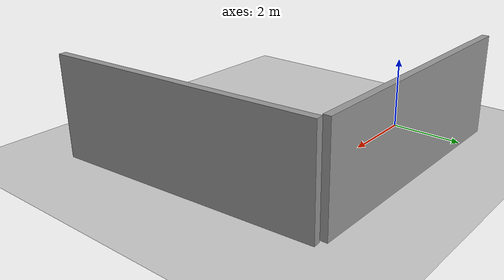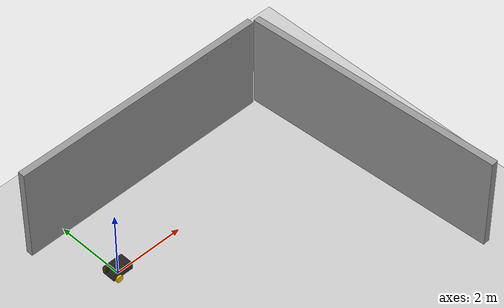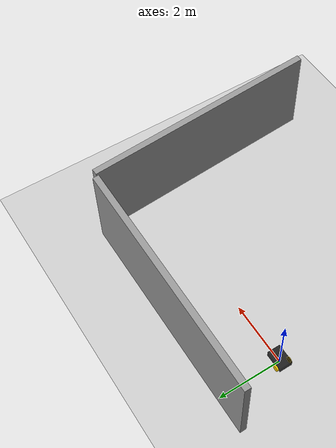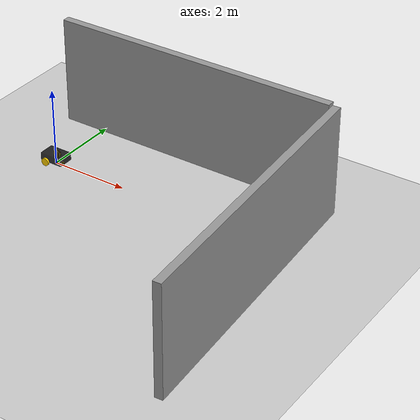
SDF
<sdf version="1.9">
 <world name="empty">
  <physics name="1ms" type="ignored">
   <max_step_size>0.001</max_step_size>
   <real_time_factor>1</real_time_factor>
   <real_time_update_rate>1000</real_time_update_rate>
  </physics>
  <plugin name="gz::sim::systems::Physics" filename="ignition-gazebo-physics-system"/>
  <plugin name="gz::sim::systems::UserCommands" filename="ignition-gazebo-user-commands-system"/>
  <plugin name="gz::sim::systems::SceneBroadcaster" filename="ignition-gazebo-scene-broadcaster-system"/>
  <plugin name="gz::sim::systems::Contact" filename="ignition-gazebo-contact-system"/>
  <gravity>0 0 -9.8</gravity>
  <magnetic_field>6e-06 2.3e-05 -4.2e-05</magnetic_field>
  <atmosphere type="adiabatic"/>
  <scene><ambient>0.4 0.4 0.4 1</ambient><background>0.7 0.7 0.7 1</background><shadows>true</shadows></scene>
  <model name="ground_plane">
   <static>true</static>
   <link name="link">
    <collision name="collision">
     <geometry><plane><normal>0 0 1</normal><size>100 100</size></plane></geometry>
    </collision>
    <visual name="visual"><geometry><plane><normal>0 0 1</normal><size>100 100</size></plane></geometry></visual>
    <inertial>
     <mass>1</mass>
     <inertia><ixx>1</ixx><ixy>0</ixy><ixz>0</ixz><iyy>1</iyy><iyz>0</iyz><izz>1</izz></inertia>
    </inertial>
   </link>
  </model>
  <model name="grey_wall">
   <static>true</static>
   <link name="link">
    <pose>0 0 1.4 0 -0 0</pose>
    <collision name="collision"><geometry><box><size>7.5 0.2 2.8</size></box></geometry></collision>
    <visual name="visual">
     <cast_shadows>false</cast_shadows>
     <geometry><box><size>7.5 0.2 2.8</size></box></geometry>
     <material>
      <script>
       <uri>https://fuel.gazebosim.org/1.0/openrobotics/models/grey wall/3/files/materials/scripts</uri>
       <uri>https://fuel.gazebosim.org/1.0/openrobotics/models/grey wall/3/files/materials/textures</uri>
       <name>vrc/grey_wall</name>
      </script>
     </material>
    </visual>
    <inertial>
     <mass>1</mass>
     <inertia><ixx>1</ixx><ixy>0</ixy><ixz>0</ixz><iyy>1</iyy><iyz>0</iyz><izz>1</izz></inertia>
    </inertial>
   </link>
   <pose>6.80478 -1.81847 0 0 -0 1.63551</pose>
  </model>
  <model name="grey_wall_0">
   <static>true</static>
   <link name="link">
    <pose>0 0 1.4 0 -0 0</pose>
    <collision name="collision"><geometry><box><size>7.5 0.2 2.8</size></box></geometry></collision>
    <visual name="visual">
     <cast_shadows>false</cast_shadows>
     <geometry><box><size>7.5 0.2 2.8</size></box></geometry>
     <material>
      <script>
       <uri>https://fuel.gazebosim.org/1.0/openrobotics/models/grey wall/3/files/materials/scripts</uri>
       <uri>https://fuel.gazebosim.org/1.0/openrobotics/models/grey wall/3/files/materials/textures</uri>
       <name>vrc/grey_wall</name>
      </script>
     </material>
    </visual>
    <inertial>
     <mass>1</mass>
     <inertia><ixx>1</ixx><ixy>0</ixy><ixz>0</ixz><iyy>1</iyy><iyz>0</iyz><izz>1</izz></inertia>
    </inertial>
   </link>
   <pose>2.64302 1.96838 0 0 -0 0</pose>
  </model>
  <model name="my_robot">
   <link name="base_footprint">
    <inertial>
     <pose>0.018182 0 0.186364 0 -0 0</pose>
     <mass>5.5</mass>
     <inertia>
      <ixx>0.094060599999999994</ixx>
      <ixy>0</ixy>
      <ixz>0.0136364</ixz>
      <iyy>0.195576</iyy>
      <iyz>0</iyz>
      <izz>0.235348</izz>
     </inertia>
    </inertial>
    <collision name="base_footprint_fixed_joint_lump__base_link_collision">
     <pose>0 0 0.2 0 0 0</pose>
     <geometry><box><size>0.6 0.4 0.2</size></box></geometry>
    </collision>
    <collision name="base_footprint_fixed_joint_lump__caster_wheel_link_collision_1">
     <pose>0.2 0 0.05 0 0 0</pose>
     <geometry><sphere><radius>0.050000000000000003</radius></sphere></geometry>
     <surface><friction><ode><mu>0.10000000000000001</mu><mu2>0.10000000000000001</mu2></ode></friction></surface>
    </collision>
    <visual name="base_footprint_fixed_joint_lump__base_link_visual">
     <pose>0 0 0.2 0 0 0</pose>
     <geometry><box><size>0.6 0.4 0.2</size></box></geometry>
     <material><diffuse>0 0 0 0.8</diffuse><ambient>0 0 0 0.8</ambient></material>
    </visual>
    <visual name="base_footprint_fixed_joint_lump__caster_wheel_link_visual_1">
     <pose>0.2 0 0.05 0 0 0</pose>
     <geometry><sphere><radius>0.050000000000000003</radius></sphere></geometry>
     <material><diffuse>1 0.8125 0 1</diffuse><ambient>1 0.8125 0 1</ambient></material>
    </visual>
   </link>
   <joint name="base_left_wheel_joint" type="revolute">
    <parent>base_footprint</parent>
    <child>left_wheel_link</child>
    <axis>
     <xyz>0 0 1</xyz>
     <limit>
      <lower>-10000000000000000</lower>
      <upper>10000000000000000</upper>
      <effort>inf</effort>
      <velocity>inf</velocity>
      <stiffness>100000000</stiffness>
      <dissipation>1</dissipation>
     </limit>
     <dynamics>
      <spring_reference>0</spring_reference>
      <spring_stiffness>0</spring_stiffness>
      <damping>0</damping>
      <friction>0</friction>
     </dynamics>
    </axis>
   </joint>
   <link name="left_wheel_link">
    <pose>-0.15 0.225 0.1 -1.57 0 0</pose>
    <inertial>
     <mass>1</mass>
     <inertia>
      <ixx>0.0027083300000000001</ixx>
      <ixy>0</ixy>
      <ixz>0</ixz>
      <iyy>0.0027083300000000001</iyy>
      <iyz>0</iyz>
      <izz>0.0050000000000000001</izz>
     </inertia>
    </inertial>
    <collision name="left_wheel_link_collision">
     <geometry><sphere><radius>0.10000000000000001</radius></sphere></geometry>
    </collision>
    <visual name="left_wheel_link_visual">
     <geometry>
      <cylinder><length>0.050000000000000003</length><radius>0.10000000000000001</radius></cylinder>
     </geometry>
     <material><diffuse>1 0.8125 0 1</diffuse><ambient>1 0.8125 0 1</ambient></material>
    </visual>
   </link>
   <joint name="base_right_wheel_joint" type="revolute">
    <parent>base_footprint</parent>
    <child>right_wheel_link</child>
    <axis>
     <xyz>0 0 1</xyz>
     <limit>
      <lower>-10000000000000000</lower>
      <upper>10000000000000000</upper>
      <effort>inf</effort>
      <velocity>inf</velocity>
      <stiffness>100000000</stiffness>
      <dissipation>1</dissipation>
     </limit>
     <dynamics>
      <spring_reference>0</spring_reference>
      <spring_stiffness>0</spring_stiffness>
      <damping>0</damping>
      <friction>0</friction>
     </dynamics>
    </axis>
   </joint>
   <link name="right_wheel_link">
    <pose>-0.15 -0.225 0.1 -1.57 0 0</pose>
    <inertial>
     <mass>1</mass>
     <inertia>
      <ixx>0.0027083300000000001</ixx>
      <ixy>0</ixy>
      <ixz>0</ixz>
      <iyy>0.0027083300000000001</iyy>
      <iyz>0</iyz>
      <izz>0.0050000000000000001</izz>
     </inertia>
    </inertial>
    <collision name="right_wheel_link_collision">
     <geometry><sphere><radius>0.10000000000000001</radius></sphere></geometry>
    </collision>
    <visual name="right_wheel_link_visual">
     <geometry>
      <cylinder><length>0.050000000000000003</length><radius>0.10000000000000001</radius></cylinder>
     </geometry>
     <material><diffuse>1 0.8125 0 1</diffuse><ambient>1 0.8125 0 1</ambient></material>
    </visual>
   </link>
   <plugin name="gz::sim::systems::DiffDrive" filename="gz-sim-diff-drive-system">
    <left_joint>base_left_wheel_joint</left_joint>
    <right_joint>base_right_wheel_joint</right_joint>
    <wheel_separation>0.45</wheel_separation>
    <wheel_radius>0.1</wheel_radius>
    <frame_id>odom</frame_id>
    <child_frame_id>base_footprint</child_frame_id>
   </plugin>
   <plugin name="gz::sim::systems::JointStatePublisher" filename="gz-sim-joint-state-publisher-system">
    <joint_name>base_left_wheel_joint</joint_name>
    <joint_name>base_right_wheel_joint</joint_name>
   </plugin>
   <frame name="base_caster_wheel_joint" attached_to="base_link"><pose>0.2 0 -0.05 0 -0 0</pose></frame>
   <frame name="caster_wheel_link" attached_to="base_caster_wheel_joint"/>
   <frame name="base_joint" attached_to="base_footprint"><pose>0 0 0.1 0 -0 0</pose></frame>
   <frame name="base_link" attached_to="base_joint"/>
   <static>false</static>
  </model>
  <light name="sun" type="directional">
   <pose>0 0 10 0 -0 0</pose>
   <intensity>1</intensity>
   <direction>-0.5 0.1 -0.9</direction>
   <diffuse>1 1 1 1</diffuse>
   <specular>0.1 0.1 0.1 1</specular>
   <attenuation><range>10</range><linear>1</linear><constant>1</constant><quadratic>0</quadratic></attenuation>
   <spot><inner_angle>0</inner_angle><outer_angle>0</outer_angle><falloff>0</falloff></spot>
  </light>
 </world>
</sdf>
